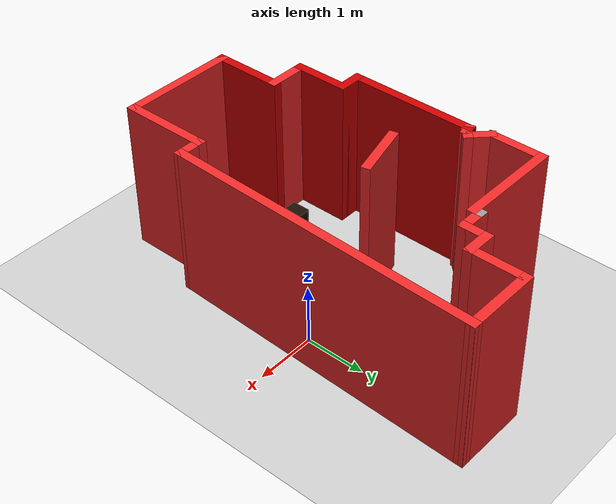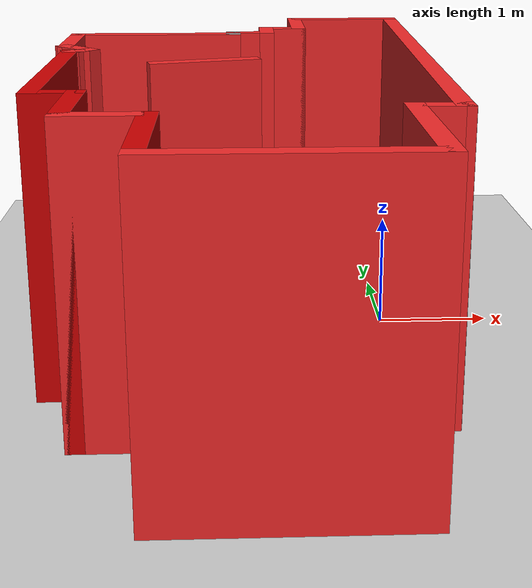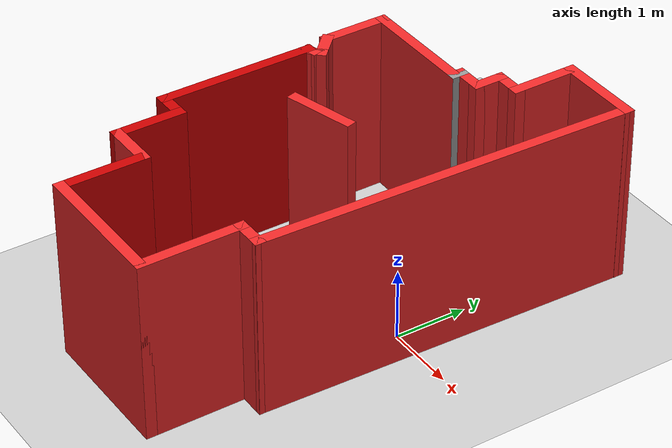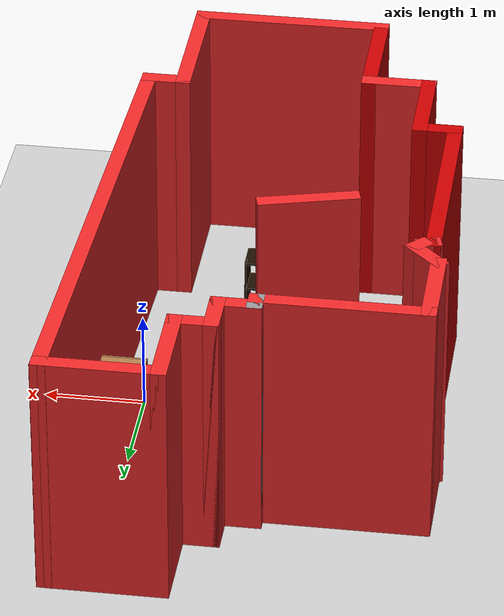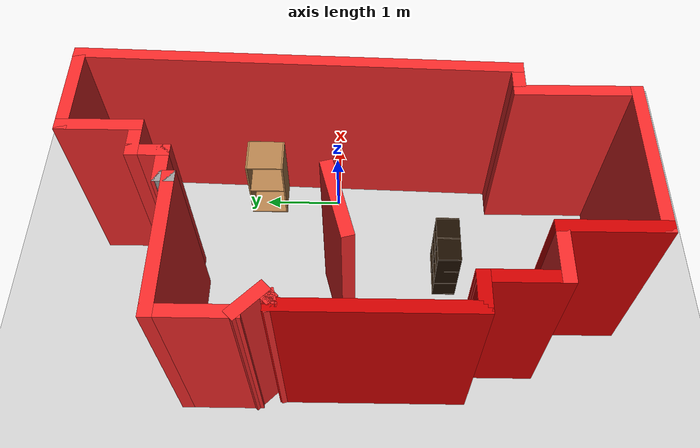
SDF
<sdf version="1.7">
 <world name="default">
  <light name="sun" type="directional">
   <pose>0 0 10 0 -0 0</pose>
   <diffuse>0.8 0.8 0.8 1</diffuse>
   <specular>0.2 0.2 0.2 1</specular>
   <attenuation>
    <range>1000</range>
    <constant>0.9</constant>
    <linear>0.01</linear>
    <quadratic>0.001</quadratic>
   </attenuation>
   <direction>-0.5 0.1 -0.9</direction>
   <spot><inner_angle>0</inner_angle><outer_angle>0</outer_angle><falloff>0</falloff></spot>
  </light>
  <model name="ground_plane">
   <static>1</static>
   <link name="link">
    <collision name="collision">
     <geometry><plane><normal>0 0 1</normal><size>100 100</size></plane></geometry>
     <surface><friction><ode><mu>100</mu><mu2>50</mu2></ode></friction></surface>
    </collision>
    <visual name="visual">
     <cast_shadows>0</cast_shadows>
     <geometry><plane><normal>0 0 1</normal><size>100 100</size></plane></geometry>
     <material>
      <script><uri>file://media/materials/scripts/gazebo.material</uri><name>Gazebo/Grey</name></script>
     </material>
    </visual>
   </link>
  </model>
  <gravity>0 0 -9.8</gravity>
  <magnetic_field>6e-06 2.3e-05 -4.2e-05</magnetic_field>
  <atmosphere type="adiabatic"/>
  <physics name="default_physics" default="0" type="ode">
   <max_step_size>0.001</max_step_size>
   <real_time_factor>1</real_time_factor>
   <real_time_update_rate>1000</real_time_update_rate>
  </physics>
  <scene><ambient>0.4 0.4 0.4 1</ambient><background>0.7 0.7 0.7 1</background><shadows>1</shadows></scene>
  <spherical_coordinates>
   <surface_model>EARTH_WGS84</surface_model>
   <latitude_deg>0</latitude_deg>
   <longitude_deg>0</longitude_deg>
   <elevation>0</elevation>
   <heading_deg>0</heading_deg>
  </spherical_coordinates>
  <model name="map_2">
   <pose>-1.28107 -0.208551 0 0 -0 0</pose>
   <link name="Wall_10">
    <collision name="Wall_10_Collision">
     <geometry><box><size>0.5 0.15 2.5</size></box></geometry>
     <pose>0 0 1.25 0 -0 0</pose>
    </collision>
    <visual name="Wall_10_Visual">
     <pose>0 0 1.25 0 -0 0</pose>
     <geometry><box><size>0.5 0.15 2.5</size></box></geometry>
     <material>
      <script><uri>file://media/materials/scripts/gazebo.material</uri><name>Gazebo/Grey</name></script>
      <ambient>0.937255 0.160784 0.160784 1</ambient>
     </material>
     <meta><layer>0</layer></meta>
    </visual>
    <pose>-1.56193 0.997091 0 0 -0 -0.785398</pose>
   </link>
   <link name="Wall_11">
    <collision name="Wall_11_Collision">
     <geometry><box><size>0.25 0.15 2.5</size></box></geometry>
     <pose>0 0 1.25 0 -0 0</pose>
    </collision>
    <visual name="Wall_11_Visual">
     <pose>0 0 1.25 0 -0 0</pose>
     <geometry><box><size>0.25 0.15 2.5</size></box></geometry>
     <material>
      <script><uri>file://media/materials/scripts/gazebo.material</uri><name>Gazebo/Grey</name></script>
      <ambient>0.937255 0.160784 0.160784 1</ambient>
     </material>
     <meta><layer>0</layer></meta>
    </visual>
    <pose>-1.47354 0.837992 0 0 -0 -2.35619</pose>
   </link>
   <link name="Wall_12">
    <collision name="Wall_12_Collision">
     <geometry><box><size>0.25 0.15 2.5</size></box></geometry>
     <pose>0 0 1.25 0 -0 0</pose>
    </collision>
    <visual name="Wall_12_Visual">
     <pose>0 0 1.25 0 -0 0</pose>
     <geometry><box><size>0.25 0.15 2.5</size></box></geometry>
     <material>
      <script><uri>file://media/materials/scripts/gazebo.material</uri><name>Gazebo/Grey</name></script>
      <ambient>0.937255 0.160784 0.160784 1</ambient>
     </material>
     <meta><layer>0</layer></meta>
    </visual>
    <pose>-1.55719 0.789695 0 0 -0 -2.87979</pose>
   </link>
   <link name="Wall_13">
    <collision name="Wall_13_Collision">
     <geometry><box><size>2.25 0.15 2.5</size></box></geometry>
     <pose>0 0 1.25 0 -0 0</pose>
    </collision>
    <visual name="Wall_13_Visual">
     <pose>0 0 1.25 0 -0 0</pose>
     <geometry><box><size>2.25 0.15 2.5</size></box></geometry>
     <material>
      <script><uri>file://media/materials/scripts/gazebo.material</uri><name>Gazebo/Grey</name></script>
      <ambient>0.8 0 0 1</ambient>
     </material>
     <meta><layer>0</layer></meta>
    </visual>
    <pose>-1.60549 -0.273245 0 0 -0 -1.5708</pose>
   </link>
   <link name="Wall_14">
    <collision name="Wall_14_Collision">
     <geometry><box><size>0.5 0.15 2.5</size></box></geometry>
     <pose>0 0 1.25 0 -0 0</pose>
    </collision>
    <visual name="Wall_14_Visual">
     <pose>0 0 1.25 0 -0 0</pose>
     <geometry><box><size>0.5 0.15 2.5</size></box></geometry>
     <material>
      <script><uri>file://media/materials/scripts/gazebo.material</uri><name>Gazebo/Grey</name></script>
      <ambient>0.8 0 0 1</ambient>
     </material>
     <meta><layer>0</layer></meta>
    </visual>
    <pose>-1.43049 -1.32325 0 0 -0 0</pose>
   </link>
   <link name="Wall_16">
    <collision name="Wall_16_Collision">
     <geometry><box><size>1 0.15 2.5</size></box></geometry>
     <pose>0 0 1.25 0 -0 0</pose>
    </collision>
    <visual name="Wall_16_Visual">
     <pose>0 0 1.25 0 -0 0</pose>
     <geometry><box><size>1 0.15 2.5</size></box></geometry>
     <material>
      <script><uri>file://media/materials/scripts/gazebo.material</uri><name>Gazebo/Grey</name></script>
      <ambient>0.8 0 0 1</ambient>
     </material>
     <meta><layer>0</layer></meta>
    </visual>
    <pose>-1.25549 -1.74825 0 0 -0 -1.5708</pose>
   </link>
   <link name="Wall_17">
    <collision name="Wall_17_Collision">
     <geometry><box><size>0.75 0.15 2.5</size></box></geometry>
     <pose>0 0 1.25 0 -0 0</pose>
    </collision>
    <visual name="Wall_17_Visual">
     <pose>0 0 1.25 0 -0 0</pose>
     <geometry><box><size>0.75 0.15 2.5</size></box></geometry>
     <material>
      <script><uri>file://media/materials/scripts/gazebo.material</uri><name>Gazebo/Grey</name></script>
      <ambient>0.937255 0.160784 0.160784 1</ambient>
     </material>
     <meta><layer>0</layer></meta>
    </visual>
    <pose>-0.955488 -2.17325 0 0 -0 0</pose>
   </link>
   <link name="Wall_18">
    <collision name="Wall_18_Collision">
     <geometry><box><size>1.25 0.15 2.5</size></box></geometry>
     <pose>0 0 1.25 0 -0 0</pose>
    </collision>
    <visual name="Wall_18_Visual">
     <pose>0 0 1.25 0 -0 0</pose>
     <geometry><box><size>1.25 0.15 2.5</size></box></geometry>
     <material>
      <script><uri>file://media/materials/scripts/gazebo.material</uri><name>Gazebo/Grey</name></script>
      <ambient>0.8 0 0 1</ambient>
     </material>
     <meta><layer>0</layer></meta>
    </visual>
    <pose>-0.655488 -2.72324 0 0 -0 -1.5708</pose>
   </link>
   <link name="Wall_19">
    <collision name="Wall_19_Collision">
     <geometry><box><size>2 0.15 2.5</size></box></geometry>
     <pose>0 0 1.25 0 -0 0</pose>
    </collision>
    <visual name="Wall_19_Visual">
     <pose>0 0 1.25 0 -0 0</pose>
     <geometry><box><size>2 0.15 2.5</size></box></geometry>
     <material>
      <script><uri>file://media/materials/scripts/gazebo.material</uri><name>Gazebo/Grey</name></script>
      <ambient>0.937255 0.160784 0.160784 1</ambient>
     </material>
     <meta><layer>0</layer></meta>
    </visual>
    <pose>0.269512 -3.27325 0 0 -0 0</pose>
   </link>
   <link name="Wall_2">
    <collision name="Wall_2_Collision">
     <geometry><box><size>1.25 0.15 2.5</size></box></geometry>
     <pose>0 0 1.25 0 -0 0</pose>
    </collision>
    <visual name="Wall_2_Visual">
     <pose>0 0 1.25 0 -0 0</pose>
     <geometry><box><size>1.25 0.15 2.5</size></box></geometry>
     <material>
      <script><uri>file://media/materials/scripts/gazebo.material</uri><name>Gazebo/Grey</name></script>
      <ambient>0.937255 0.160784 0.160784 1</ambient>
     </material>
     <meta><layer>0</layer></meta>
    </visual>
    <pose>1.16433 3.27083 0 0 -0 3.14159</pose>
   </link>
   <link name="Wall_20">
    <collision name="Wall_20_Collision">
     <geometry><box><size>1.5 0.15 2.5</size></box></geometry>
     <pose>0 0 1.25 0 -0 0</pose>
    </collision>
    <visual name="Wall_20_Visual">
     <pose>0 0 1.25 0 -0 0</pose>
     <geometry><box><size>1.5 0.15 2.5</size></box></geometry>
     <material>
      <script><uri>file://media/materials/scripts/gazebo.material</uri><name>Gazebo/Grey</name></script>
      <ambient>0.937255 0.160784 0.160784 1</ambient>
     </material>
     <meta><layer>0</layer></meta>
    </visual>
    <pose>1.19451 -2.59824 0 0 -0 1.5708</pose>
   </link>
   <link name="Wall_21">
    <collision name="Wall_21_Collision">
     <geometry><box><size>0.5 0.15 2.5</size></box></geometry>
     <pose>0 0 1.25 0 -0 0</pose>
    </collision>
    <visual name="Wall_21_Visual">
     <pose>0 0 1.25 0 -0 0</pose>
     <geometry><box><size>0.5 0.15 2.5</size></box></geometry>
     <material>
      <script><uri>file://media/materials/scripts/gazebo.material</uri><name>Gazebo/Grey</name></script>
      <ambient>0.937255 0.160784 0.160784 1</ambient>
     </material>
     <meta><layer>0</layer></meta>
    </visual>
    <pose>1.36951 -1.92325 0 0 -0 0</pose>
   </link>
   <link name="Wall_26">
    <collision name="Wall_26_Collision">
     <geometry><box><size>5.34685 0.15 2.5</size></box></geometry>
     <pose>0 0 1.25 0 -0 0</pose>
    </collision>
    <visual name="Wall_26_Visual">
     <pose>0 0 1.25 0 -0 0</pose>
     <geometry><box><size>5.34685 0.15 2.5</size></box></geometry>
     <material>
      <script><uri>file://media/materials/scripts/gazebo.material</uri><name>Gazebo/Grey</name></script>
      <ambient>0.937255 0.160784 0.160784 1</ambient>
     </material>
     <meta><layer>0</layer></meta>
    </visual>
    <pose>1.62942 0.673794 0 0 -0 1.53811</pose>
   </link>
   <link name="Wall_28">
    <collision name="Wall_28_Collision">
     <geometry><box><size>1 0.15 2.5</size></box></geometry>
     <pose>0 0 1.25 0 -0 0</pose>
    </collision>
    <visual name="Wall_28_Visual">
     <pose>0 0 1.25 0 -0 0</pose>
     <geometry><box><size>1 0.15 2.5</size></box></geometry>
     <material>
      <script><uri>file://media/materials/scripts/gazebo.material</uri><name>Gazebo/Grey</name></script>
      <ambient>0.937255 0.160784 0.160784 1</ambient>
     </material>
     <meta><layer>0</layer></meta>
    </visual>
    <pose>-0.336228 0.155767 0 0 -0 0.261799</pose>
   </link>
   <link name="Wall_3">
    <collision name="Wall_3_Collision">
     <geometry><box><size>1 0.15 2.5</size></box></geometry>
     <pose>0 0 1.25 0 -0 0</pose>
    </collision>
    <visual name="Wall_3_Visual">
     <pose>0 0 1.25 0 -0 0</pose>
     <geometry><box><size>1 0.15 2.5</size></box></geometry>
     <material>
      <script><uri>file://media/materials/scripts/gazebo.material</uri><name>Gazebo/Grey</name></script>
      <ambient>0.937255 0.160784 0.160784 1</ambient>
     </material>
     <meta><layer>0</layer></meta>
    </visual>
    <pose>0.614328 2.84583 0 0 -0 -1.5708</pose>
   </link>
   <link name="Wall_4">
    <collision name="Wall_4_Collision">
     <geometry><box><size>0.5 0.15 2.5</size></box></geometry>
     <pose>0 0 1.25 0 -0 0</pose>
    </collision>
    <visual name="Wall_4_Visual">
     <pose>0 0 1.25 0 -0 0</pose>
     <geometry><box><size>0.5 0.15 2.5</size></box></geometry>
     <material>
      <script><uri>file://media/materials/scripts/gazebo.material</uri><name>Gazebo/Grey</name></script>
      <ambient>0.937255 0.160784 0.160784 1</ambient>
     </material>
     <meta><layer>0</layer></meta>
    </visual>
    <pose>0.439328 2.42083 0 0 -0 3.14159</pose>
   </link>
   <link name="Wall_5">
    <collision name="Wall_5_Collision">
     <geometry><box><size>0.5 0.15 2.5</size></box></geometry>
     <pose>0 0 1.25 0 -0 0</pose>
    </collision>
    <visual name="Wall_5_Visual">
     <pose>0 0 1.25 0 -0 0</pose>
     <geometry><box><size>0.5 0.15 2.5</size></box></geometry>
     <material>
      <script><uri>file://media/materials/scripts/gazebo.material</uri><name>Gazebo/Grey</name></script>
      <ambient>0.937255 0.160784 0.160784 1</ambient>
     </material>
     <meta><layer>0</layer></meta>
    </visual>
    <pose>0.264328 2.24583 0 0 -0 -1.5708</pose>
   </link>
   <link name="Wall_6">
    <collision name="Wall_6_Collision">
     <geometry><box><size>0.5 0.15 2.5</size></box></geometry>
     <pose>0 0 1.25 0 -0 0</pose>
    </collision>
    <visual name="Wall_6_Visual">
     <pose>0 0 1.25 0 -0 0</pose>
     <geometry><box><size>0.5 0.15 2.5</size></box></geometry>
     <material>
      <script><uri>file://media/materials/scripts/gazebo.material</uri><name>Gazebo/Grey</name></script>
      <ambient>0.937255 0.160784 0.160784 1</ambient>
     </material>
     <meta><layer>0</layer></meta>
    </visual>
    <pose>0.089328 2.07084 0 0 -0 3.14159</pose>
   </link>
   <link name="Wall_7">
    <collision name="Wall_7_Collision">
     <geometry><box><size>0.25 0.15 2.5</size></box></geometry>
     <pose>0 0 1.25 0 -0 0</pose>
    </collision>
    <visual name="Wall_7_Visual">
     <pose>0 0 1.25 0 -0 0</pose>
     <geometry><box><size>0.25 0.15 2.5</size></box></geometry>
     <material>
      <script><uri>file://media/materials/scripts/gazebo.material</uri><name>Gazebo/Grey</name></script>
      <ambient>1 1 1 1</ambient>
     </material>
     <meta><layer>0</layer></meta>
    </visual>
    <pose>-0.085672 2.02083 0 0 -0 -1.5708</pose>
   </link>
   <link name="Wall_8">
    <collision name="Wall_8_Collision">
     <geometry><box><size>1.75 0.15 2.5</size></box></geometry>
     <pose>0 0 1.25 0 -0 0</pose>
    </collision>
    <visual name="Wall_8_Visual">
     <pose>0 0 1.25 0 -0 0</pose>
     <geometry><box><size>1.75 0.15 2.5</size></box></geometry>
     <material>
      <script><uri>file://media/materials/scripts/gazebo.material</uri><name>Gazebo/Grey</name></script>
      <ambient>0.937255 0.160784 0.160784 1</ambient>
     </material>
     <meta><layer>0</layer></meta>
    </visual>
    <pose>-0.885672 1.97083 0 0 -0 3.14159</pose>
   </link>
   <link name="Wall_9">
    <collision name="Wall_9_Collision">
     <geometry><box><size>1 0.15 2.5</size></box></geometry>
     <pose>0 0 1.25 0 -0 0</pose>
    </collision>
    <visual name="Wall_9_Visual">
     <pose>0 0 1.25 0 -0 0</pose>
     <geometry><box><size>1 0.15 2.5</size></box></geometry>
     <material>
      <script><uri>file://media/materials/scripts/gazebo.material</uri><name>Gazebo/Grey</name></script>
      <ambient>0.937255 0.160784 0.160784 1</ambient>
     </material>
     <meta><layer>0</layer></meta>
    </visual>
    <pose>-1.68567 1.54583 0 0 -0 -1.5708</pose>
   </link>
   <static>1</static>
  </model>
  <model name="6_Cube_StorageE">
   <link name="Wall_0">
    <pose>0 0 0.01 0 -0 0</pose>
    <inertial>
     <mass>1.6201</mass>
     <inertia><ixx>0.0119</ixx><iyy>0.0631</iyy><izz>0.0513</izz><ixy>0</ixy><ixz>0</ixz><iyz>0</iyz></inertia>
    </inertial>
    <collision name="Wall_0_Collision"><geometry><box><size>0.616 0.296 0.02</size></box></geometry></collision>
    <visual name="Wall_0_Visual">
     <geometry><box><size>0.616 0.296 0.02</size></box></geometry>
     <material>
      <script><uri>file://media/materials/scripts/gazebo.material</uri><name>Gazebo/Grey</name></script>
      <ambient>0.105882 0.0509804 0 1</ambient>
     </material>
    </visual>
   </link>
   <joint name="0_2" type="fixed">
    <pose>-0.308 0 0 0 -0 0</pose>
    <parent>Wall_2</parent>
    <child>Wall_0</child>
    <axis><xyz>1 0 0</xyz><limit><lower>-1e+16</lower><upper>1e+16</upper></limit></axis>
   </joint>
   <joint name="0_12" type="fixed">
    <parent>Wall_12</parent>
    <child>Wall_0</child>
    <axis><xyz>0 0 1</xyz><limit><lower>-1e+16</lower><upper>1e+16</upper></limit></axis>
   </joint>
   <joint name="0_4" type="fixed">
    <pose>0.308 0 0 0 -0 0</pose>
    <parent>Wall_4</parent>
    <child>Wall_0</child>
    <axis><xyz>1 0 0</xyz><limit><lower>-1e+16</lower><upper>1e+16</upper></limit></axis>
   </joint>
   <link name="Wall_10">
    <pose>0 0 0.61 0 -0 0</pose>
    <inertial>
     <mass>1.6201</mass>
     <inertia><ixx>0.0119</ixx><iyy>0.0631</iyy><izz>0.0513</izz><ixy>0</ixy><ixz>0</ixz><iyz>0</iyz></inertia>
    </inertial>
    <collision name="Wall_10_Collision"><geometry><box><size>0.616 0.296 0.02</size></box></geometry></collision>
    <visual name="Wall_10_Visual">
     <geometry><box><size>0.616 0.296 0.02</size></box></geometry>
     <material>
      <script><uri>file://media/materials/scripts/gazebo.material</uri><name>Gazebo/Grey</name></script>
      <ambient>0.105882 0.0509804 0 1</ambient>
     </material>
    </visual>
   </link>
   <joint name="10_2" type="fixed">
    <pose>-0.308 0 0 0 -0 0</pose>
    <parent>Wall_2</parent>
    <child>Wall_10</child>
    <axis><xyz>1 0 0</xyz><limit><lower>-1e+16</lower><upper>1e+16</upper></limit></axis>
   </joint>
   <joint name="10_12" type="fixed">
    <parent>Wall_12</parent>
    <child>Wall_10</child>
    <axis><xyz>0 0 1</xyz><limit><lower>-1e+16</lower><upper>1e+16</upper></limit></axis>
   </joint>
   <joint name="10_4" type="fixed">
    <pose>0.308 0 0 0 -0 0</pose>
    <parent>Wall_4</parent>
    <child>Wall_10</child>
    <axis><xyz>1 0 0</xyz><limit><lower>-1e+16</lower><upper>1e+16</upper></limit></axis>
   </joint>
   <link name="Wall_12">
    <pose>0 0 0.4575 0 -0 0</pose>
    <inertial>
     <mass>2.4065</mass>
     <inertia><ixx>0.0177</ixx><iyy>0.1855</iyy><izz>0.168</izz><ixy>0</ixy><ixz>0</ixz><iyz>0</iyz></inertia>
    </inertial>
    <collision name="Wall_12_Collision"><geometry><box><size>0.02 0.296 0.915</size></box></geometry></collision>
    <visual name="Wall_12_Visual">
     <geometry><box><size>0.02 0.296 0.915</size></box></geometry>
     <material>
      <script><uri>file://media/materials/scripts/gazebo.material</uri><name>Gazebo/Grey</name></script>
      <ambient>0.105882 0.0509804 0 1</ambient>
     </material>
    </visual>
   </link>
   <link name="Wall_2">
    <pose>-0.298 0 0.4575 0 -0 0</pose>
    <inertial>
     <mass>2.4065</mass>
     <inertia><ixx>0.0177</ixx><iyy>0.1855</iyy><izz>0.168</izz><ixy>0</ixy><ixz>0</ixz><iyz>0</iyz></inertia>
    </inertial>
    <collision name="Wall_2_Collision"><geometry><box><size>0.02 0.296 0.915</size></box></geometry></collision>
    <visual name="Wall_2_Visual">
     <geometry><box><size>0.02 0.296 0.915</size></box></geometry>
     <material>
      <script><uri>file://media/materials/scripts/gazebo.material</uri><name>Gazebo/Grey</name></script>
      <ambient>0.105882 0.0509804 0 1</ambient>
     </material>
    </visual>
   </link>
   <link name="Wall_4">
    <pose>0.298 0 0.4575 0 -0 0</pose>
    <inertial>
     <mass>2.4065</mass>
     <inertia><ixx>0.0177</ixx><iyy>0.1855</iyy><izz>0.168</izz><ixy>0</ixy><ixz>0</ixz><iyz>0</iyz></inertia>
    </inertial>
    <collision name="Wall_4_Collision"><geometry><box><size>0.02 0.296 0.915</size></box></geometry></collision>
    <visual name="Wall_4_Visual">
     <geometry><box><size>0.02 0.296 0.915</size></box></geometry>
     <material>
      <script><uri>file://media/materials/scripts/gazebo.material</uri><name>Gazebo/Grey</name></script>
      <ambient>0.105882 0.0509804 0 1</ambient>
     </material>
    </visual>
   </link>
   <link name="Wall_6">
    <pose>0 0 0.905 0 -0 0</pose>
    <inertial>
     <mass>1.6201</mass>
     <inertia><ixx>0.0119</ixx><iyy>0.0631</iyy><izz>0.0513</izz><ixy>0</ixy><ixz>0</ixz><iyz>0</iyz></inertia>
    </inertial>
    <collision name="Wall_6_Collision"><geometry><box><size>0.616 0.296 0.02</size></box></geometry></collision>
    <visual name="Wall_6_Visual">
     <geometry><box><size>0.616 0.296 0.02</size></box></geometry>
     <material>
      <script><uri>file://media/materials/scripts/gazebo.material</uri><name>Gazebo/Grey</name></script>
      <ambient>0.105882 0.0509804 0 1</ambient>
     </material>
    </visual>
   </link>
   <joint name="6_2" type="fixed">
    <pose>-0.308 0 0 0 -0 0</pose>
    <parent>Wall_2</parent>
    <child>Wall_6</child>
    <axis><xyz>2 0 0</xyz><limit><lower>-1e+16</lower><upper>1e+16</upper></limit></axis>
   </joint>
   <joint name="6_12" type="fixed">
    <parent>Wall_12</parent>
    <child>Wall_6</child>
    <axis><xyz>0 0 1</xyz><limit><lower>-1e+16</lower><upper>1e+16</upper></limit></axis>
   </joint>
   <joint name="6_4" type="fixed">
    <pose>0.308 0 0 0 -0 0</pose>
    <parent>Wall_4</parent>
    <child>Wall_6</child>
    <axis><xyz>1 0 0</xyz><limit><lower>-1e+16</lower><upper>1e+16</upper></limit></axis>
   </joint>
   <link name="Wall_8">
    <pose>0 0 0.305 0 -0 0</pose>
    <inertial>
     <mass>1.6201</mass>
     <inertia><ixx>0.0119</ixx><iyy>0.0631</iyy><izz>0.0513</izz><ixy>0</ixy><ixz>0</ixz><iyz>0</iyz></inertia>
    </inertial>
    <collision name="Wall_8_Collision"><geometry><box><size>0.616 0.296 0.02</size></box></geometry></collision>
    <visual name="Wall_8_Visual">
     <geometry><box><size>0.616 0.296 0.02</size></box></geometry>
     <material>
      <script><uri>file://media/materials/scripts/gazebo.material</uri><name>Gazebo/Grey</name></script>
      <ambient>0.105882 0.0509804 0 1</ambient>
     </material>
    </visual>
   </link>
   <joint name="8_2" type="fixed">
    <pose>-0.308 0 0 0 -0 0</pose>
    <parent>Wall_2</parent>
    <child>Wall_8</child>
    <axis><xyz>1 0 0</xyz><limit><lower>-1e+16</lower><upper>1e+16</upper></limit></axis>
   </joint>
   <joint name="8_12" type="fixed">
    <parent>Wall_12</parent>
    <child>Wall_8</child>
    <axis><xyz>0 0 1</xyz><limit><lower>-1e+16</lower><upper>1e+16</upper></limit></axis>
   </joint>
   <joint name="8_4" type="fixed">
    <pose>0.308 0 0 0 -0 0</pose>
    <parent>Wall_4</parent>
    <child>Wall_8</child>
    <axis><xyz>1 0 0</xyz><limit><lower>-1e+16</lower><upper>1e+16</upper></limit></axis>
   </joint>
   <static>1</static>
   <pose>-1.13419 -1.41707 0 0 -0 0</pose>
  </model>
  <model name="cabinet">
   <static>1</static>
   <link name="cabinet_bottom_plate">
    <inertial>
     <pose>0 0 -1 0 -0 0</pose>
     <inertia><ixx>2.05</ixx><ixy>0</ixy><ixz>0</ixz><iyy>2.05</iyy><iyz>0</iyz><izz>2.05</izz></inertia>
     <mass>25</mass>
    </inertial>
    <collision name="cabinet_bottom_plate_geom">
     <pose>0 0 0.01 0 -0 0</pose>
     <geometry><box><size>0.45 0.45 0.02</size></box></geometry>
    </collision>
    <visual name="cabinet_bottom_plate_geom_visual">
     <pose>0 0 0.01 0 -0 0</pose>
     <geometry><box><size>0.45 0.45 0.02</size></box></geometry>
     <material>
      <script><uri>file://media/materials/scripts/gazebo.material</uri><name>Gazebo/Wood</name></script>
     </material>
    </visual>
    <collision name="cabinet_bottom_plate_geom_cabinet_back_plate">
     <pose>0.235 0 0.51 0 -0 0</pose>
     <geometry><box><size>0.02 0.45 1.02</size></box></geometry>
    </collision>
    <visual name="cabinet_bottom_plate_geom_cabinet_back_plate_visual">
     <pose>0.235 0 0.51 0 -0 0</pose>
     <geometry><box><size>0.02 0.45 1.02</size></box></geometry>
     <material>
      <script><uri>file://media/materials/scripts/gazebo.material</uri><name>Gazebo/Wood</name></script>
     </material>
    </visual>
    <collision name="cabinet_bottom_plate_geom_cabinet_left_plate">
     <pose>0 0.235 0.51 0 -0 0</pose>
     <geometry><box><size>0.45 0.02 1.02</size></box></geometry>
    </collision>
    <visual name="cabinet_bottom_plate_geom_cabinet_left_plate_visual">
     <pose>0 0.235 0.51 0 -0 0</pose>
     <geometry><box><size>0.45 0.02 1.02</size></box></geometry>
     <material>
      <script><uri>file://media/materials/scripts/gazebo.material</uri><name>Gazebo/Wood</name></script>
     </material>
    </visual>
    <collision name="cabinet_bottom_plate_geom_cabinet_middle_plate">
     <pose>0 0 0.51 0 -0 0</pose>
     <geometry><box><size>0.45 0.45 0.02</size></box></geometry>
    </collision>
    <visual name="cabinet_bottom_plate_geom_cabinet_middle_plate_visual">
     <pose>0 0 0.51 0 -0 0</pose>
     <geometry><box><size>0.45 0.45 0.02</size></box></geometry>
     <material>
      <script><uri>file://media/materials/scripts/gazebo.material</uri><name>Gazebo/Wood</name></script>
     </material>
    </visual>
    <collision name="cabinet_bottom_plate_geom_cabinet_right_plate">
     <pose>0 -0.235 0.51 0 -0 0</pose>
     <geometry><box><size>0.45 0.02 1.02</size></box></geometry>
    </collision>
    <visual name="cabinet_bottom_plate_geom_cabinet_right_plate_visual">
     <pose>0 -0.235 0.51 0 -0 0</pose>
     <geometry><box><size>0.45 0.02 1.02</size></box></geometry>
     <material>
      <script><uri>file://media/materials/scripts/gazebo.material</uri><name>Gazebo/Wood</name></script>
     </material>
    </visual>
    <collision name="cabinet_bottom_plate_geom_cabinet_top_plate">
     <pose>0 0 1.01 0 -0 0</pose>
     <geometry><box><size>0.45 0.45 0.02</size></box></geometry>
    </collision>
    <visual name="cabinet_bottom_plate_geom_cabinet_top_plate_visual">
     <pose>0 0 1.01 0 -0 0</pose>
     <geometry><box><size>0.45 0.45 0.02</size></box></geometry>
     <material>
      <script><uri>file://media/materials/scripts/gazebo.material</uri><name>Gazebo/Wood</name></script>
     </material>
    </visual>
   </link>
   <pose>0.062989 0.963691 0 0 -0 0</pose>
  </model>
 </world>
</sdf>
